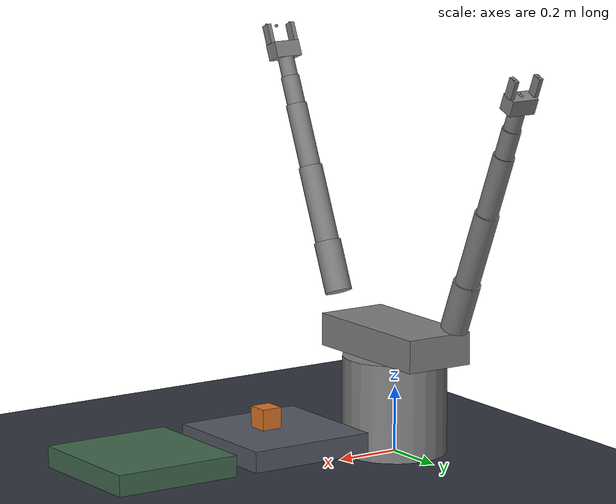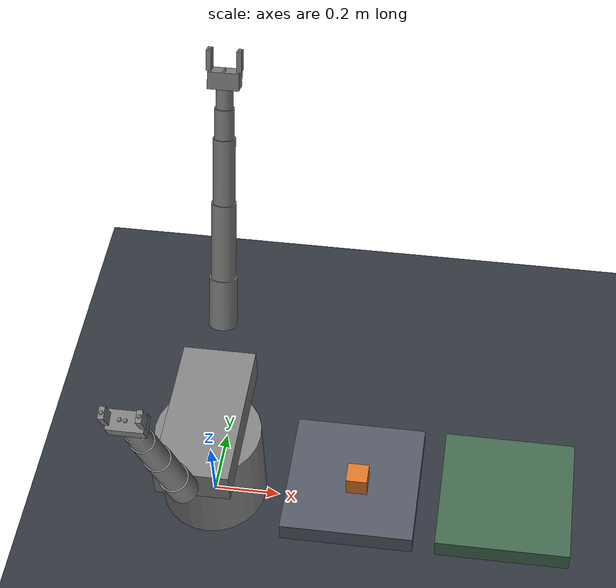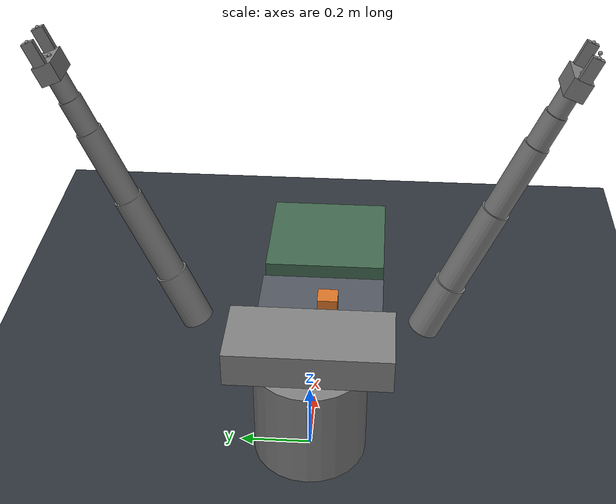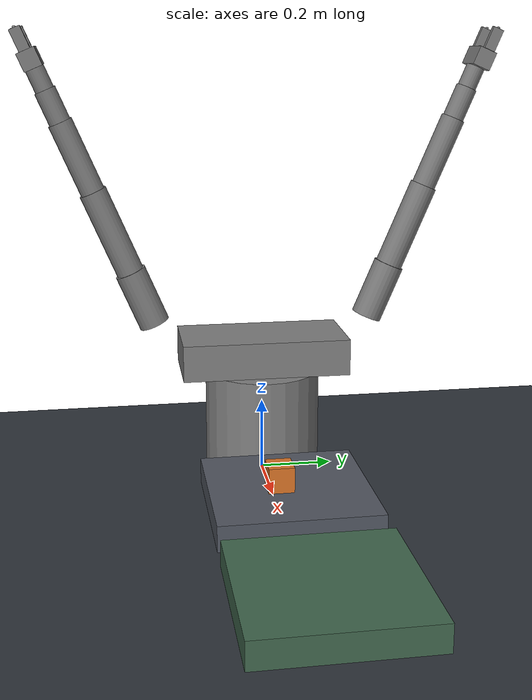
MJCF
<mujoco model="benchmark-world">
  <compiler angle="radian"/>

  <option tolerance="1e-10" integrator="implicitfast" jacobian="dense"/>

  <visual>
    <headlight ambient="0 0 0" diffuse="0 0 0" specular="0 0 0"/>
  </visual>

  <statistic extent="7.95752" center="0 0 0"/>

  <default>
    <default class="robot/main"/>
  </default>

  <worldbody>
    <geom name="world/floor" size="7.95752 7.95752 0.1" type="plane" rgba="0.18 0.2 0.23 1"/>
    <camera name="world/camera" pos="4.77451 -6.63126 4.77451" quat="0.803956 0.50933 0.164287 0.259321" fovy="50"/>
    <light name="world/key" pos="0 -2.65251 7.95752" dir="0 0 -1" type="directional" ambient="0.3 0.3 0.3" diffuse="0.8 0.8 0.8" specular="0.1 0.1 0.1"/>
    <body name="world/bench" pos="0.437663 0 0.100795">
      <geom name="world/bench_geom" size="0.198938 0.198938 0.0318301" type="box" condim="4" priority="1" friction="1 0.03 0.001" solref="0.004" solimp="0.95 0.99" rgba="0.32 0.34 0.38 1"/>
    </body>
    <body name="world/cube" pos="0.452195 -0.0244257 0.164455">
      <joint name="world/cube_free" type="free"/>
      <geom name="world/cube_geom" size="0.0318301 0.0318301 0.0318301" type="box" condim="4" priority="1" friction="1.57543 0.03 0.001" solref="0.004" solimp="0.95 0.99" mass="0.27096" rgba="0.85 0.45 0.15 1"/>
    </body>
    <body name="world/destination" pos="0.901852 0 0.100795">
      <geom name="world/destination_geom" size="0.198938 0.198938 0.0318301" type="box" condim="4" priority="1" friction="1 0.03 0.001" solref="0.004" solimp="0.95 0.99" rgba="0.25 0.4 0.3 1"/>
    </body>
    <body name="robot/base">
      <inertial pos="0 0 0.15" mass="22" diaginertia="0.3058 0.3058 0.2816"/>
      <geom size="0.16 0.15" pos="0 0 0.15" type="cylinder"/>
      <site name="robot/robot_base" pos="0 0 0"/>
      <body name="robot/torso" pos="0 0 0.3">
        <inertial pos="0 0 0.05" quat="0.5 0.5 -0.5 0.5" mass="7" diaginertia="0.151667 0.129267 0.0340667"/>
        <geom size="0.11 0.23 0.05" pos="0 0 0.05" type="box"/>
        <body name="robot/left_link_0" pos="0 0.3 0.14" quat="0.980067 -0.198669 0 0">
          <inertial pos="0 0 0.08" mass="0.798015" diaginertia="0.00205436 0.00205436 0.00070385"/>
          <joint name="robot/left_joint_0" pos="0 0 0" axis="0 0 1" range="-2.85 2.85" actuatorfrcrange="-95 95"/>
          <geom size="0.042 0.08" pos="0 0 0.08" type="cylinder"/>
          <body name="robot/left_link_1" pos="0 0 0.16">
            <inertial pos="0 0 0.12" mass="0.926974" diaginertia="0.00476605 0.00476605 0.00063314"/>
            <joint name="robot/left_joint_1" pos="0 0 0" axis="0 1 0" range="-2.85 2.85" actuatorfrcrange="-95 95"/>
            <geom size="0.03696 0.12" pos="0 0 0.12" type="cylinder"/>
            <body name="robot/left_link_2" pos="0 0 0.24">
              <inertial pos="0 0 0.1" mass="0.598207" diaginertia="0.00215223 0.00215223 0.00031641"/>
              <joint name="robot/left_joint_2" pos="0 0 0" axis="0 1 0" range="-2.85 2.85" actuatorfrcrange="-95 95"/>
              <geom size="0.032525 0.1" pos="0 0 0.1" type="cylinder"/>
              <body name="robot/left_link_3" pos="0 0 0.2">
                <inertial pos="0 0 0.045" mass="0.25" diaginertia="0.00021995 0.00021995 0.0001024"/>
                <joint name="robot/left_joint_3" pos="0 0 0" axis="0 0 1" range="-2.85 2.85" actuatorfrcrange="-95 95"/>
                <geom size="0.028622 0.045" pos="0 0 0.045" type="cylinder"/>
                <body name="robot/left_link_4" pos="0 0 0.09">
                  <inertial pos="0 0 0.03" mass="0.25" diaginertia="0.00011465 0.00011465 7.93e-05"/>
                  <joint name="robot/left_joint_4" pos="0 0 0" axis="0 1 0" range="-2.85 2.85" actuatorfrcrange="-95 95"/>
                  <geom size="0.025187 0.03" pos="0 0 0.03" type="cylinder"/>
                  <body name="robot/left_palm" pos="0 0 0.06">
                    <inertial pos="0 0 0.025" quat="0.5 0.5 0.5 0.5" mass="0.35" diaginertia="0.00030917 0.00030917 0.00014583"/>
                    <geom size="0.045 0.025 0.025" pos="0 0 0.025" type="box"/>
                    <site name="robot/left_palm_grasp_point" pos="0 -0.0114303 0.0518247"/>
                    <site name="robot/left_palm_grasp_center" pos="0 0 0.05"/>
                    <site name="robot/left_palm_wrist" pos="0 0 0"/>
                    <body name="robot/left_finger_left" pos="0.043 0 0.05">
                      <inertial pos="0 0 0.03" mass="0.06" diaginertia="2.25e-05 1.898e-05 5.48e-06"/>
                      <joint name="robot/left_grip_left" pos="0 0 0" axis="-1 0 0" type="slide" range="0 0.035" actuatorfrcrange="-45 45"/>
                      <geom size="0.007 0.015 0.03" pos="0 0 0.03" type="box"/>
                      <site name="robot/left_palm_tip" pos="0 0 0.06"/>
                      <site name="robot/left_palm_contact_0" pos="0 0 0.06"/>
                    </body>
                    <body name="robot/left_finger_right" pos="-0.043 0 0.05">
                      <inertial pos="0 0 0.03" mass="0.06" diaginertia="2.25e-05 1.898e-05 5.48e-06"/>
                      <joint name="robot/left_grip_right" pos="0 0 0" axis="1 0 0" type="slide" range="0 0.035" actuatorfrcrange="-45 45"/>
                      <geom size="0.007 0.015 0.03" pos="0 0 0.03" type="box"/>
                      <site name="robot/left_palm_contact_1" pos="0 0 0.06"/>
                    </body>
                  </body>
                </body>
              </body>
            </body>
          </body>
        </body>
        <body name="robot/right_link_0" pos="0 -0.3 0.14" quat="0.980067 0.198669 0 0">
          <inertial pos="0 0 0.08" mass="0.798015" diaginertia="0.00205436 0.00205436 0.00070385"/>
          <joint name="robot/right_joint_0" pos="0 0 0" axis="0 0 1" range="-2.85 2.85" actuatorfrcrange="-95 95"/>
          <geom size="0.042 0.08" pos="0 0 0.08" type="cylinder"/>
          <body name="robot/right_link_1" pos="0 0 0.16">
            <inertial pos="0 0 0.12" mass="0.926974" diaginertia="0.00476605 0.00476605 0.00063314"/>
            <joint name="robot/right_joint_1" pos="0 0 0" axis="0 1 0" range="-2.85 2.85" actuatorfrcrange="-95 95"/>
            <geom size="0.03696 0.12" pos="0 0 0.12" type="cylinder"/>
            <body name="robot/right_link_2" pos="0 0 0.24">
              <inertial pos="0 0 0.1" mass="0.598207" diaginertia="0.00215223 0.00215223 0.00031641"/>
              <joint name="robot/right_joint_2" pos="0 0 0" axis="0 1 0" range="-2.85 2.85" actuatorfrcrange="-95 95"/>
              <geom size="0.032525 0.1" pos="0 0 0.1" type="cylinder"/>
              <body name="robot/right_link_3" pos="0 0 0.2">
                <inertial pos="0 0 0.045" mass="0.25" diaginertia="0.00021995 0.00021995 0.0001024"/>
                <joint name="robot/right_joint_3" pos="0 0 0" axis="0 0 1" range="-2.85 2.85" actuatorfrcrange="-95 95"/>
                <geom size="0.028622 0.045" pos="0 0 0.045" type="cylinder"/>
                <body name="robot/right_link_4" pos="0 0 0.09">
                  <inertial pos="0 0 0.03" mass="0.25" diaginertia="0.00011465 0.00011465 7.93e-05"/>
                  <joint name="robot/right_joint_4" pos="0 0 0" axis="0 1 0" range="-2.85 2.85" actuatorfrcrange="-95 95"/>
                  <geom size="0.025187 0.03" pos="0 0 0.03" type="cylinder"/>
                  <body name="robot/right_palm" pos="0 0 0.06">
                    <inertial pos="0 0 0.025" quat="0.5 0.5 0.5 0.5" mass="0.35" diaginertia="0.00030917 0.00030917 0.00014583"/>
                    <geom size="0.045 0.025 0.025" pos="0 0 0.025" type="box"/>
                    <site name="robot/right_palm_grasp_point" pos="0 -0.0114303 0.108175"/>
                    <site name="robot/right_palm_grasp_center" pos="0 0 0.05"/>
                    <site name="robot/right_palm_wrist" pos="0 0 0"/>
                    <body name="robot/right_finger_left" pos="0.043 0 0.05">
                      <inertial pos="0 0 0.03" mass="0.06" diaginertia="2.25e-05 1.898e-05 5.48e-06"/>
                      <joint name="robot/right_grip_left" pos="0 0 0" axis="-1 0 0" type="slide" range="0 0.035" actuatorfrcrange="-45 45"/>
                      <geom size="0.007 0.015 0.03" pos="0 0 0.03" type="box"/>
                      <site name="robot/right_palm_tip" pos="0 0 0.06"/>
                      <site name="robot/right_palm_contact_0" pos="0 0 0.06"/>
                    </body>
                    <body name="robot/right_finger_right" pos="-0.043 0 0.05">
                      <inertial pos="0 0 0.03" mass="0.06" diaginertia="2.25e-05 1.898e-05 5.48e-06"/>
                      <joint name="robot/right_grip_right" pos="0 0 0" axis="1 0 0" type="slide" range="0 0.035" actuatorfrcrange="-45 45"/>
                      <geom size="0.007 0.015 0.03" pos="0 0 0.03" type="box"/>
                      <site name="robot/right_palm_contact_1" pos="0 0 0.06"/>
                    </body>
                  </body>
                </body>
              </body>
            </body>
          </body>
        </body>
      </body>
    </body>
  </worldbody>

  <actuator>
    <general name="robot/left_joint_0_motor" joint="robot/left_joint_0" ctrllimited="true" ctrlrange="-95 95" forcelimited="true" forcerange="-95 95"/>
    <general name="robot/left_joint_1_motor" joint="robot/left_joint_1" ctrllimited="true" ctrlrange="-95 95" forcelimited="true" forcerange="-95 95"/>
    <general name="robot/left_joint_2_motor" joint="robot/left_joint_2" ctrllimited="true" ctrlrange="-95 95" forcelimited="true" forcerange="-95 95"/>
    <general name="robot/left_joint_3_motor" joint="robot/left_joint_3" ctrllimited="true" ctrlrange="-95 95" forcelimited="true" forcerange="-95 95"/>
    <general name="robot/left_joint_4_motor" joint="robot/left_joint_4" ctrllimited="true" ctrlrange="-95 95" forcelimited="true" forcerange="-95 95"/>
    <general name="robot/left_grip_left_motor" joint="robot/left_grip_left" ctrllimited="true" ctrlrange="-45 45" forcelimited="true" forcerange="-45 45"/>
    <general name="robot/left_grip_right_motor" joint="robot/left_grip_right" ctrllimited="true" ctrlrange="-45 45" forcelimited="true" forcerange="-45 45"/>
    <general name="robot/right_joint_0_motor" joint="robot/right_joint_0" ctrllimited="true" ctrlrange="-95 95" forcelimited="true" forcerange="-95 95"/>
    <general name="robot/right_joint_1_motor" joint="robot/right_joint_1" ctrllimited="true" ctrlrange="-95 95" forcelimited="true" forcerange="-95 95"/>
    <general name="robot/right_joint_2_motor" joint="robot/right_joint_2" ctrllimited="true" ctrlrange="-95 95" forcelimited="true" forcerange="-95 95"/>
    <general name="robot/right_joint_3_motor" joint="robot/right_joint_3" ctrllimited="true" ctrlrange="-95 95" forcelimited="true" forcerange="-95 95"/>
    <general name="robot/right_joint_4_motor" joint="robot/right_joint_4" ctrllimited="true" ctrlrange="-95 95" forcelimited="true" forcerange="-95 95"/>
    <general name="robot/right_grip_left_motor" joint="robot/right_grip_left" ctrllimited="true" ctrlrange="-45 45" forcelimited="true" forcerange="-45 45"/>
    <general name="robot/right_grip_right_motor" joint="robot/right_grip_right" ctrllimited="true" ctrlrange="-45 45" forcelimited="true" forcerange="-45 45"/>
  </actuator>
</mujoco>
